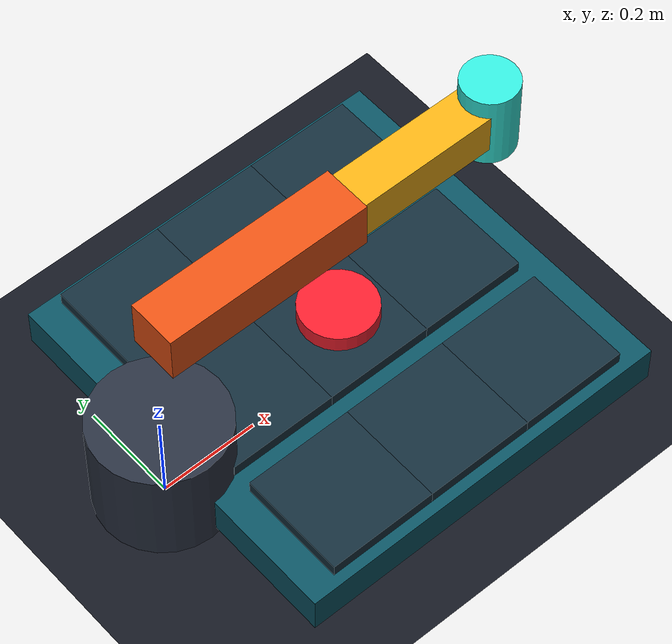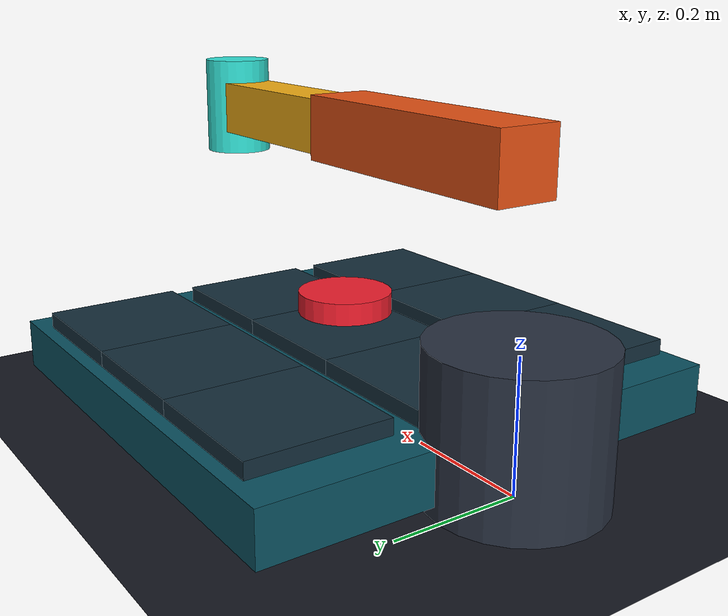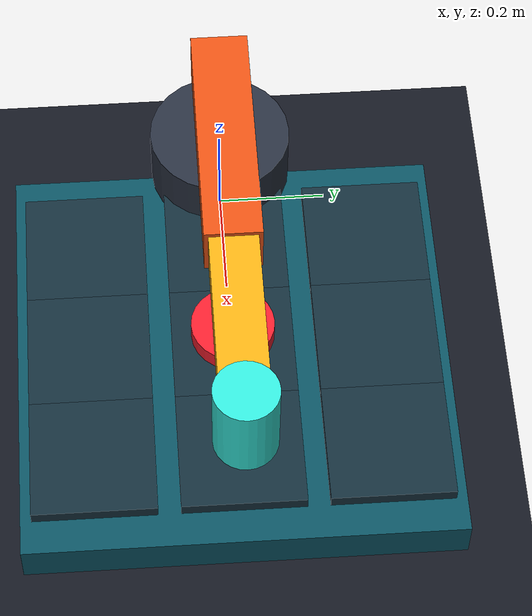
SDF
<?xml version="1.0"?>
<sdf version="1.9">
  <world name="robotlab_tictactoe">
    <gravity>0 0 -9.81</gravity>

    <plugin filename="gz-sim-physics-system" name="gz::sim::systems::Physics"/>
    <plugin filename="gz-sim-user-commands-system" name="gz::sim::systems::UserCommands"/>
    <plugin filename="gz-sim-scene-broadcaster-system" name="gz::sim::systems::SceneBroadcaster"/>

    <gui fullscreen="0">
      <plugin filename="MinimalScene" name="3D View">
        <engine>ogre2</engine>
        <scene>scene</scene>
        <ambient_light>0.55 0.55 0.55</ambient_light>
        <background_color>0.03 0.04 0.07</background_color>
        <camera_pose>-1.2 -1.5 1.4 0 0.65 0.9</camera_pose>
        <camera_clip><near>0.01</near><far>100</far></camera_clip>
      </plugin>
      <plugin filename="GzSceneManager" name="Scene Manager"/>
    </gui>

    <scene>
      <ambient>0.25 0.25 0.25 1</ambient>
      <background>0.04 0.05 0.08 1</background>
      <shadows>true</shadows>
    </scene>

    <light name="key_light" type="directional">
      <cast_shadows>true</cast_shadows>
      <pose>0 -1.5 2.5 0.4 0 0</pose>
      <diffuse>0.9 0.9 0.85 1</diffuse>
      <specular>0.3 0.3 0.3 1</specular>
      <direction>-0.3 0.2 -1</direction>
    </light>

    <model name="ground">
      <static>true</static>
      <link name="link">
        <collision name="collision"><geometry><plane><normal>0 0 1</normal><size>20 20</size></plane></geometry></collision>
        <visual name="visual"><geometry><plane><normal>0 0 1</normal><size>20 20</size></plane></geometry><material><ambient>0.06 0.07 0.1 1</ambient><diffuse>0.08 0.09 0.13 1</diffuse></material></visual>
      </link>
    </model>

    <model name="board">
      <static>true</static>
      <pose>0.40 0 0.06 0 0 0</pose>
      <link name="board_link">
        <collision name="collision"><geometry><box><size>0.78 0.78 0.08</size></box></geometry></collision>
        <visual name="board_visual"><geometry><box><size>0.78 0.78 0.08</size></box></geometry><material><ambient>0.03 0.12 0.16 1</ambient><diffuse>0.04 0.32 0.38 1</diffuse><specular>0.2 0.4 0.4 1</specular></material></visual>
      </link>
    </model>

    <!-- Nine raised cells make the game board readable from the camera. -->
    <model name="cell_0"><static>true</static><pose>0.18 -0.26 0.115 0 0 0</pose><link name="link"><visual name="visual"><geometry><box><size>0.22 0.22 0.025</size></box></geometry><material><diffuse>0.08 0.18 0.23 1</diffuse><ambient>0.05 0.1 0.13 1</ambient></material></visual></link></model>
    <model name="cell_1"><static>true</static><pose>0.40 -0.26 0.115 0 0 0</pose><link name="link"><visual name="visual"><geometry><box><size>0.22 0.22 0.025</size></box></geometry><material><diffuse>0.08 0.18 0.23 1</diffuse><ambient>0.05 0.1 0.13 1</ambient></material></visual></link></model>
    <model name="cell_2"><static>true</static><pose>0.62 -0.26 0.115 0 0 0</pose><link name="link"><visual name="visual"><geometry><box><size>0.22 0.22 0.025</size></box></geometry><material><diffuse>0.08 0.18 0.23 1</diffuse><ambient>0.05 0.1 0.13 1</ambient></material></visual></link></model>
    <model name="cell_3"><static>true</static><pose>0.18 0 0.115 0 0 0</pose><link name="link"><visual name="visual"><geometry><box><size>0.22 0.22 0.025</size></box></geometry><material><diffuse>0.08 0.18 0.23 1</diffuse><ambient>0.05 0.1 0.13 1</ambient></material></visual></link></model>
    <model name="cell_4"><static>true</static><pose>0.40 0 0.115 0 0 0</pose><link name="link"><visual name="visual"><geometry><box><size>0.22 0.22 0.025</size></box></geometry><material><diffuse>0.08 0.18 0.23 1</diffuse><ambient>0.05 0.1 0.13 1</ambient></material></visual></link></model>
    <model name="cell_5"><static>true</static><pose>0.62 0 0.115 0 0 0</pose><link name="link"><visual name="visual"><geometry><box><size>0.22 0.22 0.025</size></box></geometry><material><diffuse>0.08 0.18 0.23 1</diffuse><ambient>0.05 0.1 0.13 1</ambient></material></visual></link></model>
    <model name="cell_6"><static>true</static><pose>0.18 0.26 0.115 0 0 0</pose><link name="link"><visual name="visual"><geometry><box><size>0.22 0.22 0.025</size></box></geometry><material><diffuse>0.08 0.18 0.23 1</diffuse><ambient>0.05 0.1 0.13 1</ambient></material></visual></link></model>
    <model name="cell_7"><static>true</static><pose>0.40 0.26 0.115 0 0 0</pose><link name="link"><visual name="visual"><geometry><box><size>0.22 0.22 0.025</size></box></geometry><material><diffuse>0.08 0.18 0.23 1</diffuse><ambient>0.05 0.1 0.13 1</ambient></material></visual></link></model>
    <model name="cell_8"><static>true</static><pose>0.62 0.26 0.115 0 0 0</pose><link name="link"><visual name="visual"><geometry><box><size>0.22 0.22 0.025</size></box></geometry><material><diffuse>0.08 0.18 0.23 1</diffuse><ambient>0.05 0.1 0.13 1</ambient></material></visual></link></model>

    <!-- A deliberately simple 3-DOF arm for motion planning experiments. -->
    <model name="robotlab_arm">
      <pose>0 0 0.11 0 0 0</pose>
      <link name="base_link">
        <inertial><mass>2.0</mass><inertia><ixx>0.02</ixx><iyy>0.02</iyy><izz>0.02</izz><ixy>0</ixy><ixz>0</ixz><iyz>0</iyz></inertia></inertial>
        <visual name="base_visual"><geometry><cylinder><radius>0.13</radius><length>0.22</length></cylinder></geometry><material><diffuse>0.16 0.19 0.25 1</diffuse><ambient>0.08 0.1 0.14 1</ambient></material></visual>
        <collision name="base_collision"><geometry><cylinder><radius>0.13</radius><length>0.22</length></cylinder></geometry></collision>
      </link>
      <link name="shoulder_link">
        <pose relative_to="base_link">0 0 0.34 0 0 0</pose>
        <inertial><mass>0.65</mass><inertia><ixx>0.01</ixx><iyy>0.01</iyy><izz>0.01</izz><ixy>0</ixy><ixz>0</ixz><iyz>0</iyz></inertia></inertial>
        <visual name="visual"><pose>0.21 0 0 0 0 0</pose><geometry><box><size>0.42 0.10 0.10</size></box></geometry><material><diffuse>0.9 0.32 0.08 1</diffuse><ambient>0.45 0.12 0.02 1</ambient></material></visual>
        <collision name="collision"><pose>0.21 0 0 0 0 0</pose><geometry><box><size>0.42 0.10 0.10</size></box></geometry></collision>
      </link>
      <link name="elbow_link">
        <pose relative_to="shoulder_link">0.42 0 0 0 0 0</pose>
        <inertial><mass>0.5</mass><inertia><ixx>0.008</ixx><iyy>0.008</iyy><izz>0.008</izz><ixy>0</ixy><ixz>0</ixz><iyz>0</iyz></inertia></inertial>
        <visual name="visual"><pose>0.16 0 0 0 0 0</pose><geometry><box><size>0.32 0.085 0.085</size></box></geometry><material><diffuse>0.95 0.68 0.08 1</diffuse><ambient>0.45 0.25 0.02 1</ambient></material></visual>
        <collision name="collision"><pose>0.16 0 0 0 0 0</pose><geometry><box><size>0.32 0.085 0.085</size></box></geometry></collision>
      </link>
      <link name="tool_link">
        <pose relative_to="elbow_link">0.32 0 0 0 0 0</pose>
        <inertial><mass>0.15</mass><inertia><ixx>0.002</ixx><iyy>0.002</iyy><izz>0.002</izz><ixy>0</ixy><ixz>0</ixz><iyz>0</iyz></inertia></inertial>
        <visual name="tool_visual"><geometry><cylinder><radius>0.055</radius><length>0.16</length></cylinder></geometry><material><diffuse>0.2 0.9 0.85 1</diffuse><ambient>0.05 0.35 0.32 1</ambient><emissive>0.02 0.12 0.1 1</emissive></material></visual>
        <collision name="tool_collision"><geometry><cylinder><radius>0.055</radius><length>0.16</length></cylinder></geometry></collision>
      </link>

      <joint name="base_anchor" type="fixed"><parent>world</parent><child>base_link</child></joint>
      <joint name="base_joint" type="revolute"><pose relative_to="base_link">0 0 0.34 0 0 0</pose><parent>base_link</parent><child>shoulder_link</child><axis><xyz>0 0 1</xyz><limit><lower>-3.14</lower><upper>3.14</upper></limit></axis></joint>
      <joint name="shoulder_joint" type="revolute"><pose relative_to="shoulder_link">0.42 0 0 0 0 0</pose><parent>shoulder_link</parent><child>elbow_link</child><axis><xyz>0 1 0</xyz><limit><lower>-2.3</lower><upper>2.3</upper></limit></axis></joint>
      <joint name="elbow_joint" type="revolute"><pose relative_to="elbow_link">0.32 0 0 0 0 0</pose><parent>elbow_link</parent><child>tool_link</child><axis><xyz>0 1 0</xyz><limit><lower>-2.6</lower><upper>2.6</upper></limit></axis></joint>

      <plugin filename="gz-sim-joint-state-publisher-system" name="gz::sim::systems::JointStatePublisher"/>
      <plugin filename="gz-sim-joint-position-controller-system" name="gz::sim::systems::JointPositionController"><joint_name>base_joint</joint_name><topic>/robotlab/arm/base/cmd</topic><p_gain>4</p_gain><i_gain>0.1</i_gain><d_gain>0.2</d_gain></plugin>
      <plugin filename="gz-sim-joint-position-controller-system" name="gz::sim::systems::JointPositionController"><joint_name>shoulder_joint</joint_name><topic>/robotlab/arm/shoulder/cmd</topic><p_gain>4</p_gain><i_gain>0.1</i_gain><d_gain>0.2</d_gain></plugin>
      <plugin filename="gz-sim-joint-position-controller-system" name="gz::sim::systems::JointPositionController"><joint_name>elbow_joint</joint_name><topic>/robotlab/arm/elbow/cmd</topic><p_gain>4</p_gain><i_gain>0.1</i_gain><d_gain>0.2</d_gain></plugin>
    </model>

    <!-- One spare puck illustrates where the robot can place a move. -->
    <model name="demo_token"><pose>0.40 0 0.17 0 0 0</pose><link name="link"><inertial><mass>0.05</mass><inertia><ixx>0.0001</ixx><iyy>0.0001</iyy><izz>0.0001</izz><ixy>0</ixy><ixz>0</ixz><iyz>0</iyz></inertia></inertial><visual name="visual"><geometry><cylinder><radius>0.075</radius><length>0.035</length></cylinder></geometry><material><diffuse>0.95 0.12 0.18 1</diffuse><ambient>0.5 0.03 0.04 1</ambient><emissive>0.08 0.01 0.01 1</emissive></material></visual><collision name="collision"><geometry><cylinder><radius>0.075</radius><length>0.035</length></cylinder></geometry></collision></link></model>
  </world>
</sdf>
